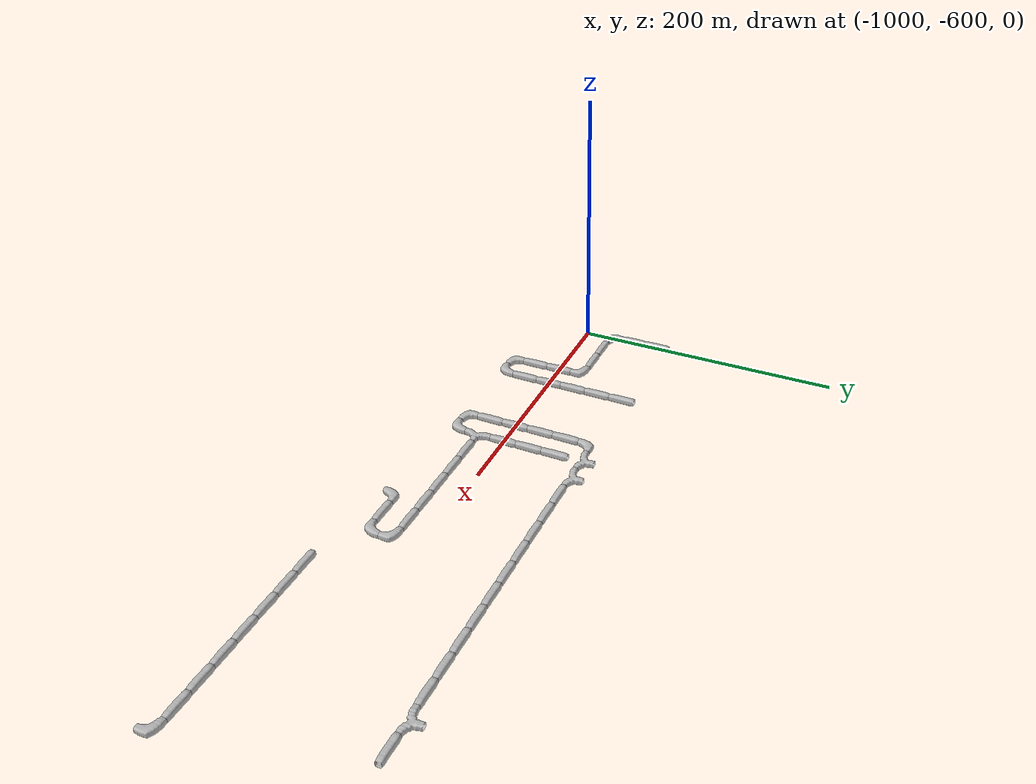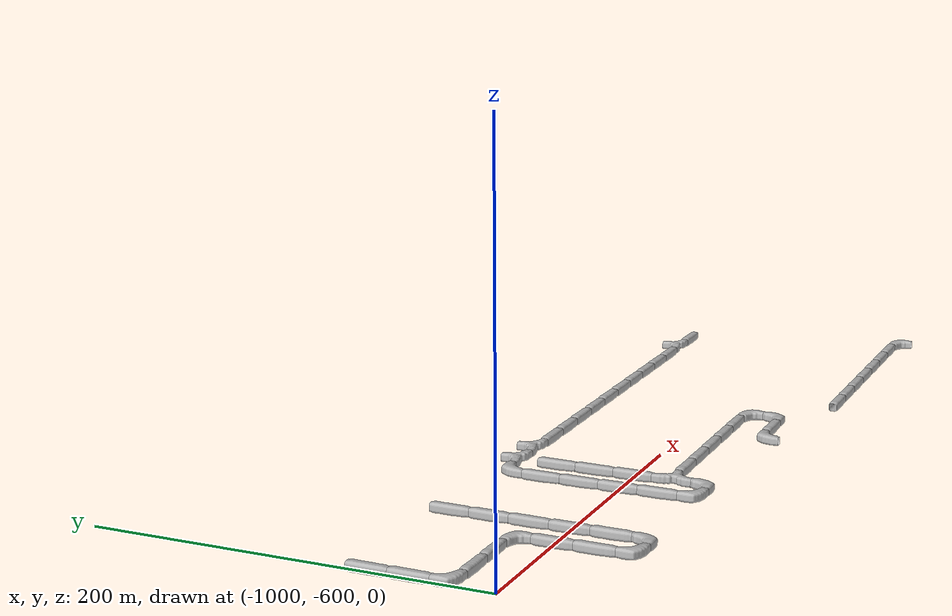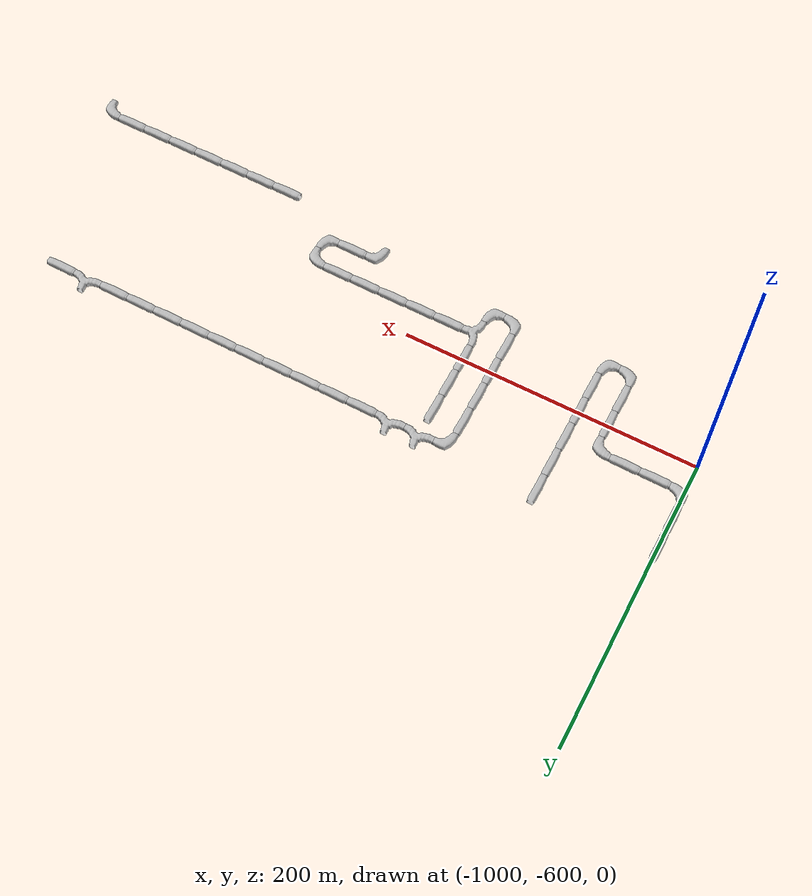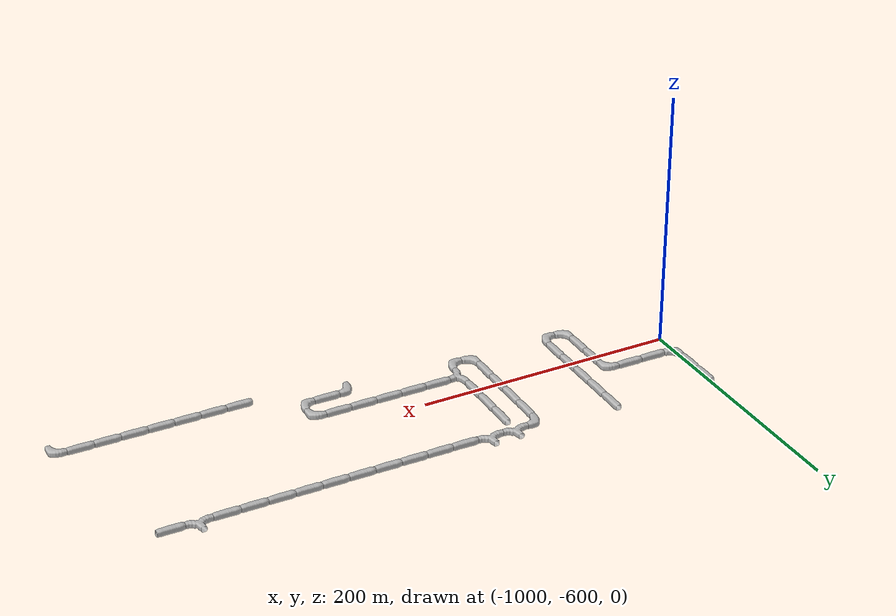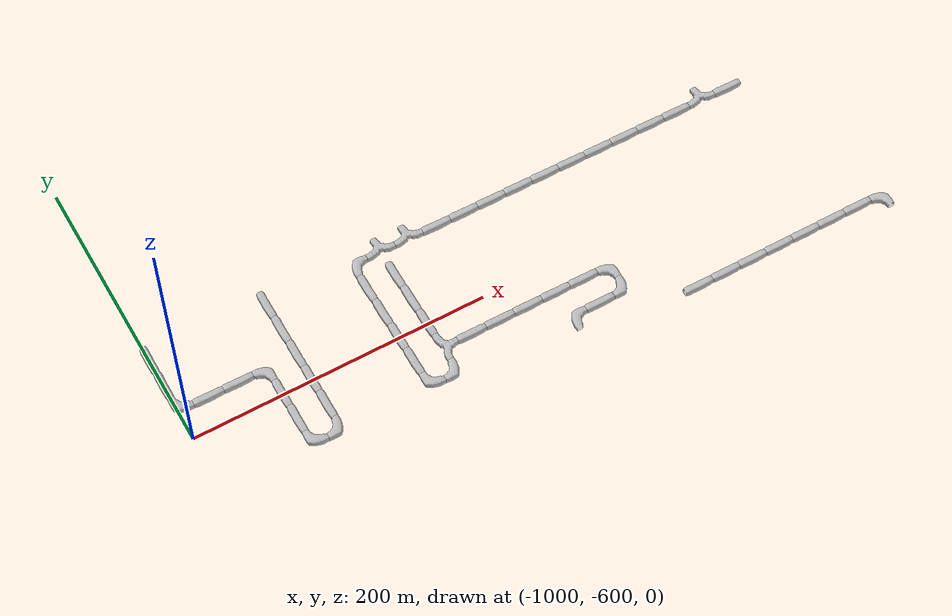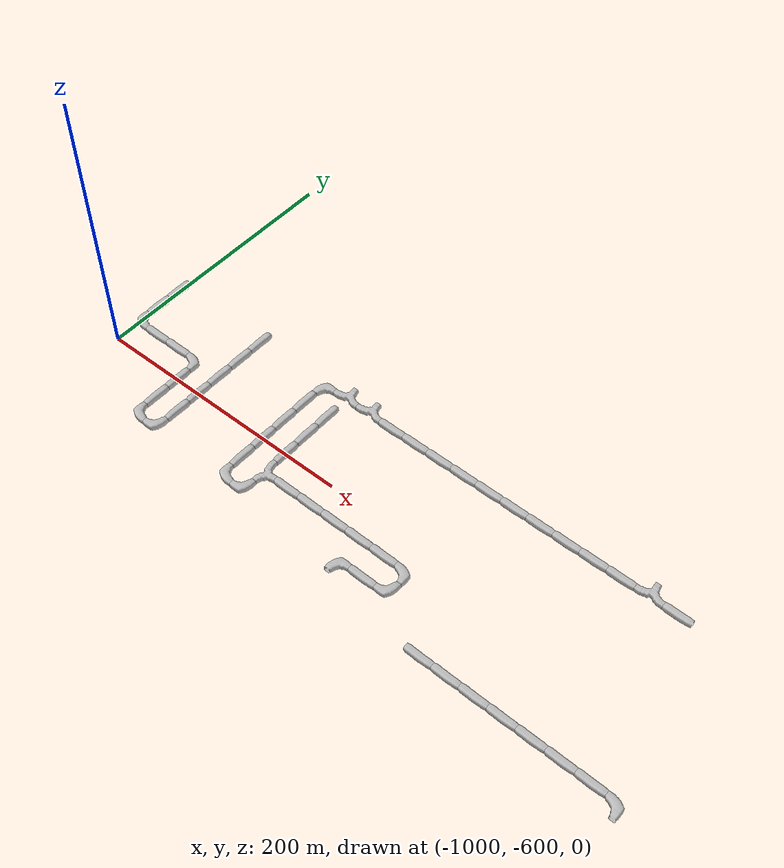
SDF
<sdf version="1.6">
 <world name="cave_32000">
  <include>
   <static>true</static>
   <name>cave_-41_-27</name>
   <pose>-820 -540 0 0 0 0.0</pose>
   <uri>model://cave_3way_20m</uri>
  </include>
  <include>
   <static>true</static>
   <name>cave_-40_-27</name>
   <pose>-800 -540 0 0 0 1.5707963267948966</pose>
   <uri>model://cave_straight_20m</uri>
  </include>
  <include>
   <static>true</static>
   <name>cave_-39_-27</name>
   <pose>-780 -540 0 0 0 1.5707963267948966</pose>
   <uri>model://cave_straight_20m</uri>
  </include>
  <include>
   <static>true</static>
   <name>cave_-38_-27</name>
   <pose>-760 -540 0 0 0 1.5707963267948966</pose>
   <uri>model://cave_straight_20m</uri>
  </include>
  <include>
   <static>true</static>
   <name>cave_-37_-27</name>
   <pose>-740 -540 0 0 0 1.5707963267948966</pose>
   <uri>model://cave_straight_20m</uri>
  </include>
  <include>
   <static>true</static>
   <name>cave_-36_-27</name>
   <pose>-720 -540 0 0 0 1.5707963267948966</pose>
   <uri>model://cave_straight_20m</uri>
  </include>
  <include>
   <static>true</static>
   <name>cave_-35_-27</name>
   <pose>-700 -540 0 0 0 1.5707963267948966</pose>
   <uri>model://cave_straight_20m</uri>
  </include>
  <include>
   <static>true</static>
   <name>cave_-34_-27</name>
   <pose>-680 -540 0 0 0 1.5707963267948966</pose>
   <uri>model://cave_straight_20m</uri>
  </include>
  <include>
   <static>true</static>
   <name>cave_-33_-27</name>
   <pose>-660 -540 0 0 0 1.5707963267948966</pose>
   <uri>model://cave_straight_20m</uri>
  </include>
  <include>
   <static>true</static>
   <name>cave_-32_-27</name>
   <pose>-640 -540 0 0 0 1.5707963267948966</pose>
   <uri>model://cave_straight_20m</uri>
  </include>
  <include>
   <static>true</static>
   <name>cave_-31_-27</name>
   <pose>-620 -540 0 0 0 1.5707963267948966</pose>
   <uri>model://cave_straight_20m</uri>
  </include>
  <include>
   <static>true</static>
   <name>cave_-30_-27</name>
   <pose>-600 -540 0 0 0 0.0</pose>
   <uri>model://cave_3way_20m</uri>
  </include>
  <include>
   <static>true</static>
   <name>cave_-29_-27</name>
   <pose>-580 -540 0 0 0 1.5707963267948966</pose>
   <uri>model://cave_straight_20m</uri>
  </include>
  <include>
   <static>true</static>
   <name>cave_-42_-27</name>
   <pose>-840 -540 0 0 0 0.0</pose>
   <uri>model://cave_3way_20m</uri>
  </include>
  <include>
   <static>true</static>
   <name>cave_-43_-27</name>
   <pose>-860 -540 0 0 0 -1.5707963267948966</pose>
   <uri>model://cave_L_20m</uri>
  </include>
  <include>
   <static>true</static>
   <name>cave_-43_-28</name>
   <pose>-860 -560 0 0 0 0.0</pose>
   <uri>model://cave_straight_20m</uri>
  </include>
  <include>
   <static>true</static>
   <name>cave_-43_-29</name>
   <pose>-860 -580 0 0 0 0.0</pose>
   <uri>model://cave_straight_20m</uri>
  </include>
  <include>
   <static>true</static>
   <name>cave_-43_-30</name>
   <pose>-860 -600 0 0 0 0.0</pose>
   <uri>model://cave_straight_20m</uri>
  </include>
  <include>
   <static>true</static>
   <name>cave_-43_-31</name>
   <pose>-860 -620 0 0 0 0.0</pose>
   <uri>model://cave_straight_20m</uri>
  </include>
  <include>
   <static>true</static>
   <name>cave_-43_-32</name>
   <pose>-860 -640 0 0 0 0.0</pose>
   <uri>model://cave_L_20m</uri>
  </include>
  <include>
   <static>true</static>
   <name>cave_-42_-32</name>
   <pose>-840 -640 0 0 0 1.5707963267948966</pose>
   <uri>model://cave_L_20m</uri>
  </include>
  <include>
   <static>true</static>
   <name>cave_-42_-31</name>
   <pose>-840 -620 0 0 0 -1.5707963267948966</pose>
   <uri>model://cave_3way_20m</uri>
  </include>
  <include>
   <static>true</static>
   <name>cave_-41_-31</name>
   <pose>-820 -620 0 0 0 1.5707963267948966</pose>
   <uri>model://cave_straight_20m</uri>
  </include>
  <include>
   <static>true</static>
   <name>cave_-40_-31</name>
   <pose>-800 -620 0 0 0 1.5707963267948966</pose>
   <uri>model://cave_straight_20m</uri>
  </include>
  <include>
   <static>true</static>
   <name>cave_-39_-31</name>
   <pose>-780 -620 0 0 0 1.5707963267948966</pose>
   <uri>model://cave_straight_20m</uri>
  </include>
  <include>
   <static>true</static>
   <name>cave_-38_-31</name>
   <pose>-760 -620 0 0 0 1.5707963267948966</pose>
   <uri>model://cave_straight_20m</uri>
  </include>
  <include>
   <static>true</static>
   <name>cave_-37_-31</name>
   <pose>-740 -620 0 0 0 1.5707963267948966</pose>
   <uri>model://cave_straight_20m</uri>
  </include>
  <include>
   <static>true</static>
   <name>cave_-36_-31</name>
   <pose>-720 -620 0 0 0 3.141592653589793</pose>
   <uri>model://cave_L_20m</uri>
  </include>
  <include>
   <static>true</static>
   <name>cave_-36_-32</name>
   <pose>-720 -640 0 0 0 1.5707963267948966</pose>
   <uri>model://cave_L_20m</uri>
  </include>
  <include>
   <static>true</static>
   <name>cave_-37_-32</name>
   <pose>-740 -640 0 0 0 1.5707963267948966</pose>
   <uri>model://cave_straight_20m</uri>
  </include>
  <include>
   <static>true</static>
   <name>cave_-38_-32</name>
   <pose>-760 -640 0 0 0 -1.5707963267948966</pose>
   <uri>model://cave_L_20m</uri>
  </include>
  <include>
   <static>true</static>
   <name>cave_-34_-33</name>
   <pose>-680 -660 0 0 0 1.5707963267948966</pose>
   <uri>model://cave_straight_20m</uri>
  </include>
  <include>
   <static>true</static>
   <name>cave_-33_-33</name>
   <pose>-660 -660 0 0 0 1.5707963267948966</pose>
   <uri>model://cave_straight_20m</uri>
  </include>
  <include>
   <static>true</static>
   <name>cave_-32_-33</name>
   <pose>-640 -660 0 0 0 1.5707963267948966</pose>
   <uri>model://cave_straight_20m</uri>
  </include>
  <include>
   <static>true</static>
   <name>cave_-31_-33</name>
   <pose>-620 -660 0 0 0 1.5707963267948966</pose>
   <uri>model://cave_straight_20m</uri>
  </include>
  <include>
   <static>true</static>
   <name>cave_-30_-33</name>
   <pose>-600 -660 0 0 0 1.5707963267948966</pose>
   <uri>model://cave_straight_20m</uri>
  </include>
  <include>
   <static>true</static>
   <name>cave_-29_-33</name>
   <pose>-580 -660 0 0 0 1.5707963267948966</pose>
   <uri>model://cave_straight_20m</uri>
  </include>
  <include>
   <static>true</static>
   <name>cave_-28_-33</name>
   <pose>-560 -660 0 0 0 1.5707963267948966</pose>
   <uri>model://cave_straight_20m</uri>
  </include>
  <include>
   <static>true</static>
   <name>cave_-27_-33</name>
   <pose>-540 -660 0 0 0 3.141592653589793</pose>
   <uri>model://cave_L_20m</uri>
  </include>
  <include>
   <static>true</static>
   <name>cave_-42_-30</name>
   <pose>-840 -600 0 0 0 0.0</pose>
   <uri>model://cave_straight_20m</uri>
  </include>
  <include>
   <static>true</static>
   <name>cave_-42_-29</name>
   <pose>-840 -580 0 0 0 0.0</pose>
   <uri>model://cave_straight_20m</uri>
  </include>
  <include>
   <static>true</static>
   <name>cave_-42_-28</name>
   <pose>-840 -560 0 0 0 0.0</pose>
   <uri>model://cave_straight_20m</uri>
  </include>
  <include>
   <static>true</static>
   <name>cave_-50_-27</name>
   <pose>-1000 -540 0 0 0 0.0</pose>
   <uri>model://cave_straight_20m</uri>
  </include>
  <include>
   <static>true</static>
   <name>cave_-50_-28</name>
   <pose>-1000 -560 0 0 0 0.0</pose>
   <uri>model://cave_straight_20m</uri>
  </include>
  <include>
   <static>true</static>
   <name>cave_-50_-29</name>
   <pose>-1000 -580 0 0 0 0.0</pose>
   <uri>model://cave_L_20m</uri>
  </include>
  <include>
   <static>true</static>
   <name>cave_-49_-29</name>
   <pose>-980 -580 0 0 0 1.5707963267948966</pose>
   <uri>model://cave_straight_20m</uri>
  </include>
  <include>
   <static>true</static>
   <name>cave_-48_-29</name>
   <pose>-960 -580 0 0 0 1.5707963267948966</pose>
   <uri>model://cave_straight_20m</uri>
  </include>
  <include>
   <static>true</static>
   <name>cave_-47_-29</name>
   <pose>-940 -580 0 0 0 3.141592653589793</pose>
   <uri>model://cave_L_20m</uri>
  </include>
  <include>
   <static>true</static>
   <name>cave_-47_-30</name>
   <pose>-940 -600 0 0 0 0.0</pose>
   <uri>model://cave_straight_20m</uri>
  </include>
  <include>
   <static>true</static>
   <name>cave_-47_-31</name>
   <pose>-940 -620 0 0 0 0.0</pose>
   <uri>model://cave_straight_20m</uri>
  </include>
  <include>
   <static>true</static>
   <name>cave_-47_-32</name>
   <pose>-940 -640 0 0 0 0.0</pose>
   <uri>model://cave_L_20m</uri>
  </include>
  <include>
   <static>true</static>
   <name>cave_-46_-32</name>
   <pose>-920 -640 0 0 0 1.5707963267948966</pose>
   <uri>model://cave_L_20m</uri>
  </include>
  <include>
   <static>true</static>
   <name>cave_-46_-31</name>
   <pose>-920 -620 0 0 0 0.0</pose>
   <uri>model://cave_straight_20m</uri>
  </include>
  <include>
   <static>true</static>
   <name>cave_-46_-30</name>
   <pose>-920 -600 0 0 0 0.0</pose>
   <uri>model://cave_straight_20m</uri>
  </include>
  <include>
   <static>true</static>
   <name>cave_-46_-29</name>
   <pose>-920 -580 0 0 0 0.0</pose>
   <uri>model://cave_straight_20m</uri>
  </include>
  <include>
   <static>true</static>
   <name>cave_-46_-28</name>
   <pose>-920 -560 0 0 0 0.0</pose>
   <uri>model://cave_straight_20m</uri>
  </include>
  <include>
   <static>true</static>
   <name>cave_-46_-27</name>
   <pose>-920 -540 0 0 0 0.0</pose>
   <uri>model://cave_straight_20m</uri>
  </include>
 </world>
</sdf>
